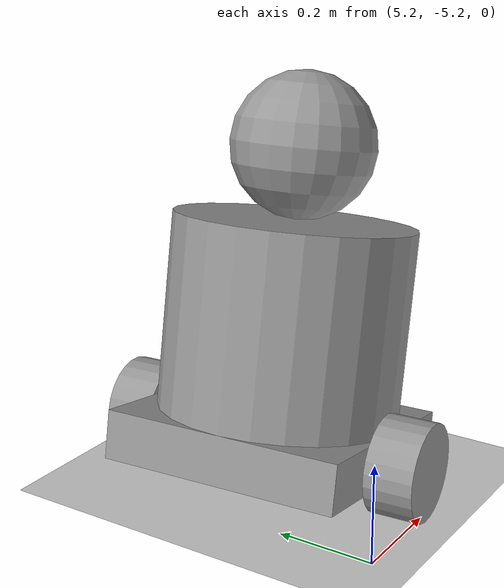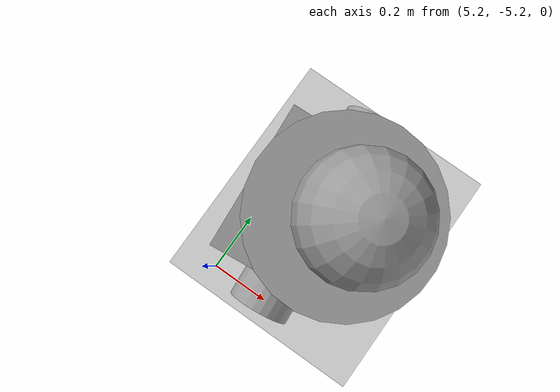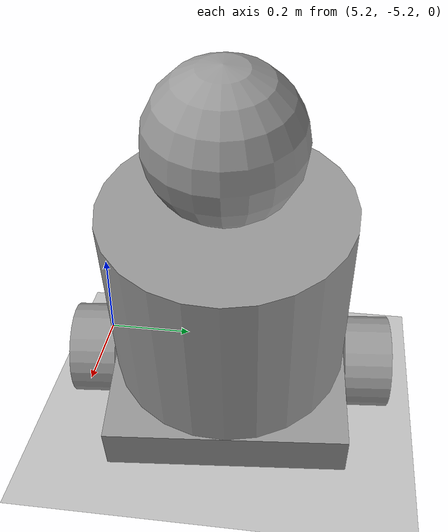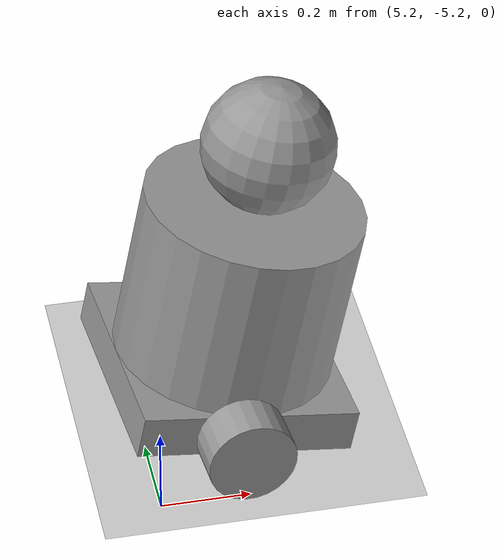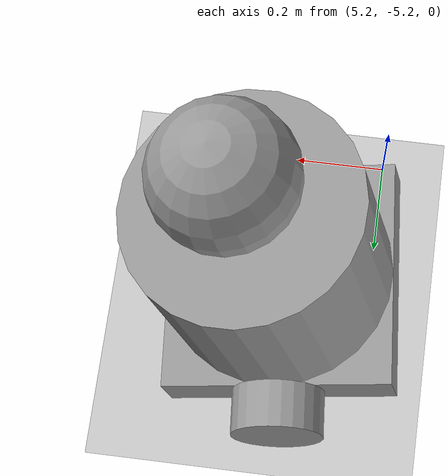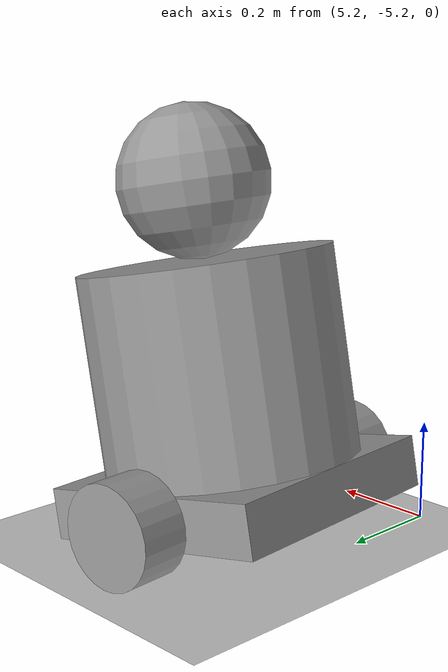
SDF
<sdf version="1.6">
 <world name="default">
  <model name="ground_plane">
   <static>1</static>
   <link name="link">
    <collision name="collision">
     <geometry><plane><normal>0 0 1</normal><size>100 100</size></plane></geometry>
     <surface>
      <contact><collide_bitmask>65535</collide_bitmask></contact>
      <friction><ode><mu>100</mu><mu2>50</mu2></ode></friction>
     </surface>
    </collision>
    <visual name="visual">
     <cast_shadows>0</cast_shadows>
     <geometry><plane><normal>0 0 1</normal><size>100 100</size></plane></geometry>
     <material>
      <script><uri>file://media/materials/scripts/gazebo.material</uri><name>Gazebo/Grey</name></script>
     </material>
    </visual>
   </link>
  </model>
  <model name="RoboModel">
   <link name="link_0">
    <pose>0.004 1e-06 -0.17 0 -0 0</pose>
    <inertial>
     <mass>1</mass>
     <inertia>
      <ixx>0.166667</ixx>
      <ixy>0</ixy>
      <ixz>0</ixz>
      <iyy>0.166667</iyy>
      <iyz>0</iyz>
      <izz>0.166667</izz>
     </inertia>
    </inertial>
    <visual name="visual">
     <geometry><box><size>0.5 0.5 0.1</size></box></geometry>
     <material>
      <lighting>1</lighting>
      <script><uri>file://media/materials/scripts/gazebo.material</uri><name>Gazebo/Grey</name></script>
      <shader type="pixel"><normal_map>__default__</normal_map></shader>
      <ambient>0.3 0.3 0.3 1</ambient>
      <diffuse>0.7 0.7 0.7 1</diffuse>
      <specular>0.01 0.01 0.01 1</specular>
      <emissive>0 0 0 1</emissive>
     </material>
    </visual>
    <collision name="collision">
     <geometry><box><size>0.5 0.5 0.1</size></box></geometry>
     <surface>
      <friction>
       <ode><mu>1</mu><mu2>1</mu2><fdir1>0 0 0</fdir1><slip1>0</slip1><slip2>0</slip2></ode>
       <torsional>
        <coefficient>1</coefficient>
        <patch_radius>0</patch_radius>
        <surface_radius>0</surface_radius>
        <use_patch_radius>1</use_patch_radius>
        <ode><slip>0</slip></ode>
       </torsional>
      </friction>
      <bounce><restitution_coefficient>0</restitution_coefficient><threshold>1e+06</threshold></bounce>
      <contact>
       <collide_without_contact>0</collide_without_contact>
       <collide_without_contact_bitmask>1</collide_without_contact_bitmask>
       <collide_bitmask>1</collide_bitmask>
       <ode>
        <soft_cfm>0</soft_cfm>
        <soft_erp>0.2</soft_erp>
        <kp>1e+13</kp>
        <kd>1</kd>
        <max_vel>0.01</max_vel>
        <min_depth>0</min_depth>
       </ode>
       <bullet>
        <split_impulse>1</split_impulse>
        <split_impulse_penetration_threshold>-0.01</split_impulse_penetration_threshold>
        <soft_cfm>0</soft_cfm>
        <soft_erp>0.2</soft_erp>
        <kp>1e+13</kp>
        <kd>1</kd>
       </bullet>
      </contact>
     </surface>
    </collision>
   </link>
   <link name="link_1">
    <pose>0.004 1e-06 0.08 0 -0 0</pose>
    <inertial>
     <mass>1</mass>
     <inertia><ixx>0.145833</ixx><ixy>0</ixy><ixz>0</ixz><iyy>0.145833</iyy><iyz>0</iyz><izz>0.125</izz></inertia>
    </inertial>
    <visual name="visual">
     <geometry><cylinder><radius>0.25</radius><length>0.4</length></cylinder></geometry>
     <material>
      <lighting>1</lighting>
      <script><uri>file://media/materials/scripts/gazebo.material</uri><name>Gazebo/Grey</name></script>
      <shader type="pixel"><normal_map>__default__</normal_map></shader>
      <ambient>0.3 0.3 0.3 1</ambient>
      <diffuse>0.7 0.7 0.7 1</diffuse>
      <specular>0.01 0.01 0.01 1</specular>
      <emissive>0 0 0 1</emissive>
     </material>
    </visual>
    <collision name="collision">
     <geometry><cylinder><radius>0.25</radius><length>0.4</length></cylinder></geometry>
     <surface>
      <friction>
       <ode><mu>1</mu><mu2>1</mu2><fdir1>0 0 0</fdir1><slip1>0</slip1><slip2>0</slip2></ode>
       <torsional>
        <coefficient>1</coefficient>
        <patch_radius>0</patch_radius>
        <surface_radius>0</surface_radius>
        <use_patch_radius>1</use_patch_radius>
        <ode><slip>0</slip></ode>
       </torsional>
      </friction>
      <bounce><restitution_coefficient>0</restitution_coefficient><threshold>1e+06</threshold></bounce>
      <contact>
       <collide_without_contact>0</collide_without_contact>
       <collide_without_contact_bitmask>1</collide_without_contact_bitmask>
       <collide_bitmask>1</collide_bitmask>
       <ode>
        <soft_cfm>0</soft_cfm>
        <soft_erp>0.2</soft_erp>
        <kp>1e+13</kp>
        <kd>1</kd>
        <max_vel>0.01</max_vel>
        <min_depth>0</min_depth>
       </ode>
       <bullet>
        <split_impulse>1</split_impulse>
        <split_impulse_penetration_threshold>-0.01</split_impulse_penetration_threshold>
        <soft_cfm>0</soft_cfm>
        <soft_erp>0.2</soft_erp>
        <kp>1e+13</kp>
        <kd>1</kd>
       </bullet>
      </contact>
     </surface>
    </collision>
   </link>
   <link name="link_4">
    <pose>0.004 1e-06 0.43 0 -0 0</pose>
    <inertial>
     <mass>1</mass>
     <inertia><ixx>0.1</ixx><ixy>0</ixy><ixz>0</ixz><iyy>0.1</iyy><iyz>0</iyz><izz>0.1</izz></inertia>
    </inertial>
    <visual name="visual">
     <geometry><sphere><radius>0.15</radius></sphere></geometry>
     <material>
      <lighting>1</lighting>
      <script><uri>file://media/materials/scripts/gazebo.material</uri><name>Gazebo/Grey</name></script>
      <shader type="pixel"><normal_map>__default__</normal_map></shader>
      <ambient>0.3 0.3 0.3 1</ambient>
      <diffuse>0.7 0.7 0.7 1</diffuse>
      <specular>0.01 0.01 0.01 1</specular>
      <emissive>0 0 0 1</emissive>
     </material>
    </visual>
    <collision name="collision">
     <geometry><sphere><radius>0.15</radius></sphere></geometry>
     <surface>
      <friction>
       <ode><mu>1</mu><mu2>1</mu2><fdir1>0 0 0</fdir1><slip1>0</slip1><slip2>0</slip2></ode>
       <torsional>
        <coefficient>1</coefficient>
        <patch_radius>0</patch_radius>
        <surface_radius>0</surface_radius>
        <use_patch_radius>1</use_patch_radius>
        <ode><slip>0</slip></ode>
       </torsional>
      </friction>
      <bounce><restitution_coefficient>0</restitution_coefficient><threshold>1e+06</threshold></bounce>
      <contact>
       <collide_without_contact>0</collide_without_contact>
       <collide_without_contact_bitmask>1</collide_without_contact_bitmask>
       <collide_bitmask>1</collide_bitmask>
       <ode>
        <soft_cfm>0</soft_cfm>
        <soft_erp>0.2</soft_erp>
        <kp>1e+13</kp>
        <kd>1</kd>
        <max_vel>0.01</max_vel>
        <min_depth>0</min_depth>
       </ode>
       <bullet>
        <split_impulse>1</split_impulse>
        <split_impulse_penetration_threshold>-0.01</split_impulse_penetration_threshold>
        <soft_cfm>0</soft_cfm>
        <soft_erp>0.2</soft_erp>
        <kp>1e+13</kp>
        <kd>1</kd>
       </bullet>
      </contact>
     </surface>
    </collision>
   </link>
   <link name="link_5">
    <pose>-0.016 -0.300012 -0.17 1.5707 -0 0</pose>
    <inertial>
     <mass>1</mass>
     <inertia><ixx>0.145833</ixx><ixy>0</ixy><ixz>0</ixz><iyy>0.145833</iyy><iyz>0</iyz><izz>0.125</izz></inertia>
    </inertial>
    <visual name="visual">
     <geometry><cylinder><radius>0.1</radius><length>0.1</length></cylinder></geometry>
     <material>
      <lighting>1</lighting>
      <script><uri>file://media/materials/scripts/gazebo.material</uri><name>Gazebo/Grey</name></script>
      <shader type="pixel"><normal_map>__default__</normal_map></shader>
      <ambient>0.3 0.3 0.3 1</ambient>
      <diffuse>0.7 0.7 0.7 1</diffuse>
      <specular>0.01 0.01 0.01 1</specular>
      <emissive>0 0 0 1</emissive>
     </material>
    </visual>
    <collision name="collision">
     <geometry><cylinder><radius>0.1</radius><length>0.1</length></cylinder></geometry>
     <surface>
      <friction>
       <ode><mu>1</mu><mu2>1</mu2><fdir1>0 0 0</fdir1><slip1>0</slip1><slip2>0</slip2></ode>
       <torsional>
        <coefficient>1</coefficient>
        <patch_radius>0</patch_radius>
        <surface_radius>0</surface_radius>
        <use_patch_radius>1</use_patch_radius>
        <ode><slip>0</slip></ode>
       </torsional>
      </friction>
      <bounce><restitution_coefficient>0</restitution_coefficient><threshold>1e+06</threshold></bounce>
      <contact>
       <collide_without_contact>0</collide_without_contact>
       <collide_without_contact_bitmask>1</collide_without_contact_bitmask>
       <collide_bitmask>1</collide_bitmask>
       <ode>
        <soft_cfm>0</soft_cfm>
        <soft_erp>0.2</soft_erp>
        <kp>1e+13</kp>
        <kd>1</kd>
        <max_vel>0.01</max_vel>
        <min_depth>0</min_depth>
       </ode>
       <bullet>
        <split_impulse>1</split_impulse>
        <split_impulse_penetration_threshold>-0.01</split_impulse_penetration_threshold>
        <soft_cfm>0</soft_cfm>
        <soft_erp>0.2</soft_erp>
        <kp>1e+13</kp>
        <kd>1</kd>
       </bullet>
      </contact>
     </surface>
    </collision>
   </link>
   <link name="link_5_clone">
    <pose>0.004 0.30001 -0.17 1.5707 -0 0</pose>
    <inertial>
     <mass>1</mass>
     <inertia><ixx>0.145833</ixx><ixy>0</ixy><ixz>0</ixz><iyy>0.145833</iyy><iyz>0</iyz><izz>0.125</izz></inertia>
    </inertial>
    <visual name="visual">
     <geometry><cylinder><radius>0.1</radius><length>0.1</length></cylinder></geometry>
     <material>
      <lighting>1</lighting>
      <script><uri>file://media/materials/scripts/gazebo.material</uri><name>Gazebo/Grey</name></script>
      <shader type="pixel"><normal_map>__default__</normal_map></shader>
      <ambient>0.3 0.3 0.3 1</ambient>
      <diffuse>0.7 0.7 0.7 1</diffuse>
      <specular>0.01 0.01 0.01 1</specular>
      <emissive>0 0 0 1</emissive>
     </material>
    </visual>
    <collision name="collision">
     <geometry><cylinder><radius>0.1</radius><length>0.1</length></cylinder></geometry>
     <surface>
      <friction>
       <ode><mu>1</mu><mu2>1</mu2><fdir1>0 0 0</fdir1><slip1>0</slip1><slip2>0</slip2></ode>
       <torsional>
        <coefficient>1</coefficient>
        <patch_radius>0</patch_radius>
        <surface_radius>0</surface_radius>
        <use_patch_radius>1</use_patch_radius>
        <ode><slip>0</slip></ode>
       </torsional>
      </friction>
      <bounce><restitution_coefficient>0</restitution_coefficient><threshold>1e+06</threshold></bounce>
      <contact>
       <collide_without_contact>0</collide_without_contact>
       <collide_without_contact_bitmask>1</collide_without_contact_bitmask>
       <collide_bitmask>1</collide_bitmask>
       <ode>
        <soft_cfm>0</soft_cfm>
        <soft_erp>0.2</soft_erp>
        <kp>1e+13</kp>
        <kd>1</kd>
        <max_vel>0.01</max_vel>
        <min_depth>0</min_depth>
       </ode>
       <bullet>
        <split_impulse>1</split_impulse>
        <split_impulse_penetration_threshold>-0.01</split_impulse_penetration_threshold>
        <soft_cfm>0</soft_cfm>
        <soft_erp>0.2</soft_erp>
        <kp>1e+13</kp>
        <kd>1</kd>
       </bullet>
      </contact>
     </surface>
    </collision>
   </link>
   <joint name="link_0_JOINT_2" type="revolute">
    <parent>link_0</parent>
    <child>link_5_clone</child>
    <axis>
     <xyz>0 0 1</xyz>
     <use_parent_model_frame>0</use_parent_model_frame>
     <limit>
      <lower>-1.79769e+308</lower>
      <upper>1.79769e+308</upper>
      <effort>-1</effort>
      <velocity>-1</velocity>
     </limit>
     <dynamics>
      <spring_reference>0</spring_reference>
      <spring_stiffness>0</spring_stiffness>
      <damping>0</damping>
     </dynamics>
    </axis>
    <physics>
     <ode><limit><cfm>0</cfm><erp>0.2</erp></limit><suspension><cfm>0</cfm><erp>0.2</erp></suspension></ode>
    </physics>
   </joint>
   <joint name="link_0_JOINT_3" type="revolute">
    <parent>link_0</parent>
    <child>link_5</child>
    <axis>
     <xyz>0 0 -1</xyz>
     <use_parent_model_frame>0</use_parent_model_frame>
     <limit>
      <lower>-1.79769e+308</lower>
      <upper>1.79769e+308</upper>
      <effort>-1</effort>
      <velocity>-1</velocity>
     </limit>
     <dynamics>
      <spring_reference>0</spring_reference>
      <spring_stiffness>0</spring_stiffness>
      <damping>0</damping>
     </dynamics>
    </axis>
    <physics>
     <ode><limit><cfm>0</cfm><erp>0.2</erp></limit><suspension><cfm>0</cfm><erp>0.2</erp></suspension></ode>
    </physics>
   </joint>
   <joint name="link_0_JOINT_4" type="revolute">
    <parent>link_0</parent>
    <child>link_1</child>
    <axis>
     <xyz>0 0 1</xyz>
     <use_parent_model_frame>0</use_parent_model_frame>
     <limit>
      <lower>-1.79769e+308</lower>
      <upper>1.79769e+308</upper>
      <effort>-1</effort>
      <velocity>-1</velocity>
     </limit>
     <dynamics>
      <spring_reference>0</spring_reference>
      <spring_stiffness>0</spring_stiffness>
      <damping>0</damping>
     </dynamics>
    </axis>
    <physics>
     <ode><limit><cfm>0</cfm><erp>0.2</erp></limit><suspension><cfm>0</cfm><erp>0.2</erp></suspension></ode>
    </physics>
   </joint>
   <joint name="link_1_JOINT_5" type="ball">
    <parent>link_1</parent>
    <child>link_4</child>
    <physics>
     <ode><limit><cfm>0</cfm><erp>0.2</erp></limit><suspension><cfm>0</cfm><erp>0.2</erp></suspension></ode>
    </physics>
   </joint>
   <static>0</static>
   <pose>5.42175 -4.86426 0.26603 0.006483 0.192107 0.085226</pose>
  </model>
 </world>
</sdf>
